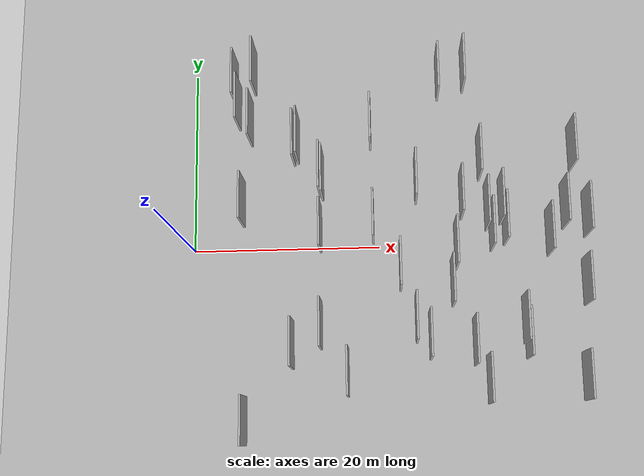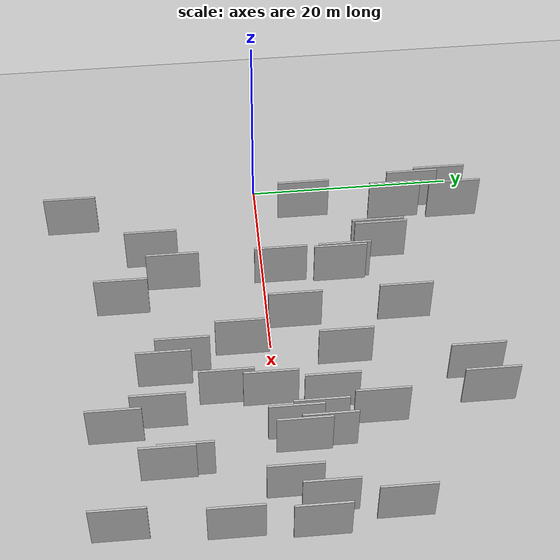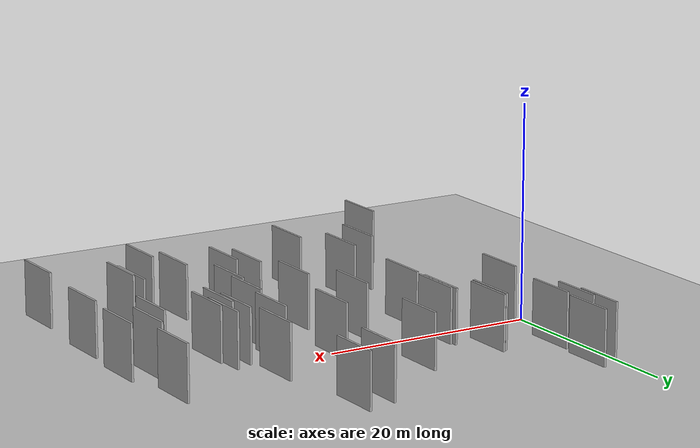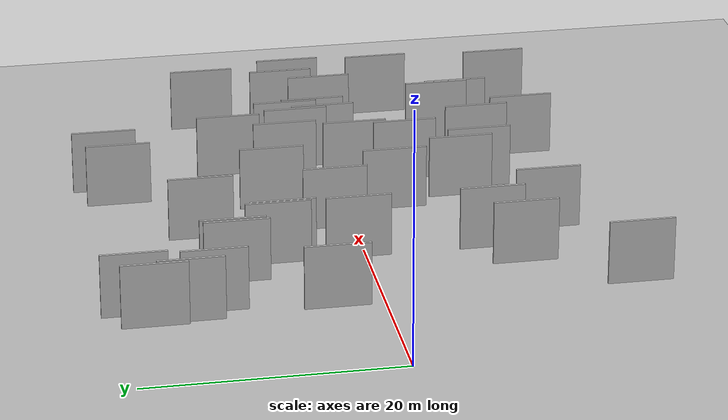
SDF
<?xml version="1.0" encoding="utf-8"?>

<sdf version="1.6">

   <world name="default">

      <gui fullscreen="0">

         <camera name="user_camera">

            <pose>-15 0 4.57585 0 0 0</pose>

            <view_controller>orbit</view_controller>

         </camera>

      </gui>

      <scene>

         <sky>

           <clouds>

             <speed>12</speed>

           </clouds>

         </sky>

         <ambient>0.4 0.4 0.4 1</ambient>

         <background>0.7 0.7 0.7 1</background>

         <shadows>1</shadows>

      </scene>

      <gravity>0 0 -9.8066</gravity>

      <magnetic_field>6e-06 2.3e-05 -4.2e-05</magnetic_field>

      <physics default="0" name="default_physics" type="ode">

         <ode>

            <solver>

               <type>quick</type>

               <iters>10</iters>

               <sor>1.0</sor>

               <use_dynamic_moi_rescaling>0</use_dynamic_moi_rescaling>

            </solver>

            <constraints>

               <cfm>0</cfm>

               <erp>0.2</erp>

               <contact_max_correcting_vel>100</contact_max_correcting_vel>

               <contact_surface_layer>0.001</contact_surface_layer>

            </constraints>

         </ode>

         <max_step_size>0.004</max_step_size>

         <real_time_factor>1</real_time_factor>

         <real_time_update_rate>250</real_time_update_rate>

      </physics>

      <light name="sun" type="directional">

         <cast_shadows>1</cast_shadows>

         <pose>0 0 10 0 0 0</pose>

         <diffuse>0.8 0.8 0.8 1</diffuse>

         <specular>0.2 0.2 0.2 1</specular>

         <attenuation>

            <range>1000</range>

            <constant>0.9</constant>

            <linear>0.01</linear>

            <quadratic>0.001</quadratic>

         </attenuation>

         <direction>-0.5 0.1 -0.9</direction>

      </light>

      <include>

         <name>ground_plane_1</name>

         <uri>model://HANNAS_ground_plane</uri>

         <pose>0 0 0  0 0 0</pose>

      </include>

      <include>

         <name>ground_plane_2</name>

         <uri>model://HANNAS_ground_plane</uri>

         <pose>100 0 0  0 0 0</pose>

      </include>

      <model name="HANNAS_wall_1">

         <static>1</static>

         <pose frame="">27.5637 -4.5949 2.5 0.000000 0.000000 1.570796</pose>

         <link name="link">

            <pose frame="">0 0 2.50 0 0 0</pose>

            <collision name="collision">

               <geometry>

                  <box>

                     <size>5.00 0.2 5.00</size>

                  </box>

               </geometry>

               <max_contacts>10</max_contacts>

               <surface>

                  <contact>

                     <ode/>

                  </contact>

                  <bounce/>

                  <friction>

                     <torsional>

                        <ode/>

                     </torsional>

                     <ode/>

                  </friction>

               </surface>

            </collision>

            <visual name="visual">

               <cast_shadows>0</cast_shadows>

               <geometry>

                  <box>

                     <size>5.00 0.2 5.00</size>

                  </box>

               </geometry>

               <material>

                  <script>

                     <uri>model://HANNAS_wall/materials/scripts</uri>

                     <uri>model://HANNAS_wall/materials/textures</uri>

                     <name>vrc/HANNAS_wall</name>

                  </script>

               </material>

            </visual>

            <self_collide>0</self_collide>

            <enable_wind>0</enable_wind>

            <kinematic>0</kinematic>

         </link>

      </model>

      <model name="HANNAS_wall_2">

         <static>1</static>

         <pose frame="">40.7192 9.8620 2.5 0.000000 0.000000 1.570796</pose>

         <link name="link">

            <pose frame="">0 0 2.50 0 0 0</pose>

            <collision name="collision">

               <geometry>

                  <box>

                     <size>5.00 0.2 5.00</size>

                  </box>

               </geometry>

               <max_contacts>10</max_contacts>

               <surface>

                  <contact>

                     <ode/>

                  </contact>

                  <bounce/>

                  <friction>

                     <torsional>

                        <ode/>

                     </torsional>

                     <ode/>

                  </friction>

               </surface>

            </collision>

            <visual name="visual">

               <cast_shadows>0</cast_shadows>

               <geometry>

                  <box>

                     <size>5.00 0.2 5.00</size>

                  </box>

               </geometry>

               <material>

                  <script>

                     <uri>model://HANNAS_wall/materials/scripts</uri>

                     <uri>model://HANNAS_wall/materials/textures</uri>

                     <name>vrc/HANNAS_wall</name>

                  </script>

               </material>

            </visual>

            <self_collide>0</self_collide>

            <enable_wind>0</enable_wind>

            <kinematic>0</kinematic>

         </link>

      </model>

      <model name="HANNAS_wall_3">

         <static>1</static>

         <pose frame="">5.9075 -18.3502 2.5 0.000000 0.000000 1.570796</pose>

         <link name="link">

            <pose frame="">0 0 2.50 0 0 0</pose>

            <collision name="collision">

               <geometry>

                  <box>

                     <size>5.00 0.2 5.00</size>

                  </box>

               </geometry>

               <max_contacts>10</max_contacts>

               <surface>

                  <contact>

                     <ode/>

                  </contact>

                  <bounce/>

                  <friction>

                     <torsional>

                        <ode/>

                     </torsional>

                     <ode/>

                  </friction>

               </surface>

            </collision>

            <visual name="visual">

               <cast_shadows>0</cast_shadows>

               <geometry>

                  <box>

                     <size>5.00 0.2 5.00</size>

                  </box>

               </geometry>

               <material>

                  <script>

                     <uri>model://HANNAS_wall/materials/scripts</uri>

                     <uri>model://HANNAS_wall/materials/textures</uri>

                     <name>vrc/HANNAS_wall</name>

                  </script>

               </material>

            </visual>

            <self_collide>0</self_collide>

            <enable_wind>0</enable_wind>

            <kinematic>0</kinematic>

         </link>

      </model>

      <model name="HANNAS_wall_4">

         <static>1</static>

         <pose frame="">39.6211 3.4792 2.5 0.000000 0.000000 1.570796</pose>

         <link name="link">

            <pose frame="">0 0 2.50 0 0 0</pose>

            <collision name="collision">

               <geometry>

                  <box>

                     <size>5.00 0.2 5.00</size>

                  </box>

               </geometry>

               <max_contacts>10</max_contacts>

               <surface>

                  <contact>

                     <ode/>

                  </contact>

                  <bounce/>

                  <friction>

                     <torsional>

                        <ode/>

                     </torsional>

                     <ode/>

                  </friction>

               </surface>

            </collision>

            <visual name="visual">

               <cast_shadows>0</cast_shadows>

               <geometry>

                  <box>

                     <size>5.00 0.2 5.00</size>

                  </box>

               </geometry>

               <material>

                  <script>

                     <uri>model://HANNAS_wall/materials/scripts</uri>

                     <uri>model://HANNAS_wall/materials/textures</uri>

                     <name>vrc/HANNAS_wall</name>

                  </script>

               </material>

            </visual>

            <self_collide>0</self_collide>

            <enable_wind>0</enable_wind>

            <kinematic>0</kinematic>

         </link>

      </model>

      <model name="HANNAS_wall_5">

         <static>1</static>

         <pose frame="">31.4234 3.5191 2.5 0.000000 0.000000 1.570796</pose>

         <link name="link">

            <pose frame="">0 0 2.50 0 0 0</pose>

            <collision name="collision">

               <geometry>

                  <box>

                     <size>5.00 0.2 5.00</size>

                  </box>

               </geometry>

               <max_contacts>10</max_contacts>

               <surface>

                  <contact>

                     <ode/>

                  </contact>

                  <bounce/>

                  <friction>

                     <torsional>

                        <ode/>

                     </torsional>

                     <ode/>

                  </friction>

               </surface>

            </collision>

            <visual name="visual">

               <cast_shadows>0</cast_shadows>

               <geometry>

                  <box>

                     <size>5.00 0.2 5.00</size>

                  </box>

               </geometry>

               <material>

                  <script>

                     <uri>model://HANNAS_wall/materials/scripts</uri>

                     <uri>model://HANNAS_wall/materials/textures</uri>

                     <name>vrc/HANNAS_wall</name>

                  </script>

               </material>

            </visual>

            <self_collide>0</self_collide>

            <enable_wind>0</enable_wind>

            <kinematic>0</kinematic>

         </link>

      </model>

      <model name="HANNAS_wall_6">

         <static>1</static>

         <pose frame="">14.0777 7.2195 2.5 0.000000 0.000000 1.570796</pose>

         <link name="link">

            <pose frame="">0 0 2.50 0 0 0</pose>

            <collision name="collision">

               <geometry>

                  <box>

                     <size>5.00 0.2 5.00</size>

                  </box>

               </geometry>

               <max_contacts>10</max_contacts>

               <surface>

                  <contact>

                     <ode/>

                  </contact>

                  <bounce/>

                  <friction>

                     <torsional>

                        <ode/>

                     </torsional>

                     <ode/>

                  </friction>

               </surface>

            </collision>

            <visual name="visual">

               <cast_shadows>0</cast_shadows>

               <geometry>

                  <box>

                     <size>5.00 0.2 5.00</size>

                  </box>

               </geometry>

               <material>

                  <script>

                     <uri>model://HANNAS_wall/materials/scripts</uri>

                     <uri>model://HANNAS_wall/materials/textures</uri>

                     <name>vrc/HANNAS_wall</name>

                  </script>

               </material>

            </visual>

            <self_collide>0</self_collide>

            <enable_wind>0</enable_wind>

            <kinematic>0</kinematic>

         </link>

      </model>

      <model name="HANNAS_wall_7">

         <static>1</static>

         <pose frame="">41.4956 -4.7548 2.5 0.000000 0.000000 1.570796</pose>

         <link name="link">

            <pose frame="">0 0 2.50 0 0 0</pose>

            <collision name="collision">

               <geometry>

                  <box>

                     <size>5.00 0.2 5.00</size>

                  </box>

               </geometry>

               <max_contacts>10</max_contacts>

               <surface>

                  <contact>

                     <ode/>

                  </contact>

                  <bounce/>

                  <friction>

                     <torsional>

                        <ode/>

                     </torsional>

                     <ode/>

                  </friction>

               </surface>

            </collision>

            <visual name="visual">

               <cast_shadows>0</cast_shadows>

               <geometry>

                  <box>

                     <size>5.00 0.2 5.00</size>

                  </box>

               </geometry>

               <material>

                  <script>

                     <uri>model://HANNAS_wall/materials/scripts</uri>

                     <uri>model://HANNAS_wall/materials/textures</uri>

                     <name>vrc/HANNAS_wall</name>

                  </script>

               </material>

            </visual>

            <self_collide>0</self_collide>

            <enable_wind>0</enable_wind>

            <kinematic>0</kinematic>

         </link>

      </model>

      <model name="HANNAS_wall_8">

         <static>1</static>

         <pose frame="">16.5166 -13.6902 2.5 0.000000 0.000000 1.570796</pose>

         <link name="link">

            <pose frame="">0 0 2.50 0 0 0</pose>

            <collision name="collision">

               <geometry>

                  <box>

                     <size>5.00 0.2 5.00</size>

                  </box>

               </geometry>

               <max_contacts>10</max_contacts>

               <surface>

                  <contact>

                     <ode/>

                  </contact>

                  <bounce/>

                  <friction>

                     <torsional>

                        <ode/>

                     </torsional>

                     <ode/>

                  </friction>

               </surface>

            </collision>

            <visual name="visual">

               <cast_shadows>0</cast_shadows>

               <geometry>

                  <box>

                     <size>5.00 0.2 5.00</size>

                  </box>

               </geometry>

               <material>

                  <script>

                     <uri>model://HANNAS_wall/materials/scripts</uri>

                     <uri>model://HANNAS_wall/materials/textures</uri>

                     <name>vrc/HANNAS_wall</name>

                  </script>

               </material>

            </visual>

            <self_collide>0</self_collide>

            <enable_wind>0</enable_wind>

            <kinematic>0</kinematic>

         </link>

      </model>

      <model name="HANNAS_wall_9">

         <static>1</static>

         <pose frame="">31.8495 1.2687 2.5 0.000000 0.000000 1.570796</pose>

         <link name="link">

            <pose frame="">0 0 2.50 0 0 0</pose>

            <collision name="collision">

               <geometry>

                  <box>

                     <size>5.00 0.2 5.00</size>

                  </box>

               </geometry>

               <max_contacts>10</max_contacts>

               <surface>

                  <contact>

                     <ode/>

                  </contact>

                  <bounce/>

                  <friction>

                     <torsional>

                        <ode/>

                     </torsional>

                     <ode/>

                  </friction>

               </surface>

            </collision>

            <visual name="visual">

               <cast_shadows>0</cast_shadows>

               <geometry>

                  <box>

                     <size>5.00 0.2 5.00</size>

                  </box>

               </geometry>

               <material>

                  <script>

                     <uri>model://HANNAS_wall/materials/scripts</uri>

                     <uri>model://HANNAS_wall/materials/textures</uri>

                     <name>vrc/HANNAS_wall</name>

                  </script>

               </material>

            </visual>

            <self_collide>0</self_collide>

            <enable_wind>0</enable_wind>

            <kinematic>0</kinematic>

         </link>

      </model>

      <model name="HANNAS_wall_10">

         <static>1</static>

         <pose frame="">37.8703 0.5974 2.5 0.000000 0.000000 1.570796</pose>

         <link name="link">

            <pose frame="">0 0 2.50 0 0 0</pose>

            <collision name="collision">

               <geometry>

                  <box>

                     <size>5.00 0.2 5.00</size>

                  </box>

               </geometry>

               <max_contacts>10</max_contacts>

               <surface>

                  <contact>

                     <ode/>

                  </contact>

                  <bounce/>

                  <friction>

                     <torsional>

                        <ode/>

                     </torsional>

                     <ode/>

                  </friction>

               </surface>

            </collision>

            <visual name="visual">

               <cast_shadows>0</cast_shadows>

               <geometry>

                  <box>

                     <size>5.00 0.2 5.00</size>

                  </box>

               </geometry>

               <material>

                  <script>

                     <uri>model://HANNAS_wall/materials/scripts</uri>

                     <uri>model://HANNAS_wall/materials/textures</uri>

                     <name>vrc/HANNAS_wall</name>

                  </script>

               </material>

            </visual>

            <self_collide>0</self_collide>

            <enable_wind>0</enable_wind>

            <kinematic>0</kinematic>

         </link>

      </model>

      <model name="HANNAS_wall_11">

         <static>1</static>

         <pose frame="">11.1091 11.1406 2.5 0.000000 0.000000 1.570796</pose>

         <link name="link">

            <pose frame="">0 0 2.50 0 0 0</pose>

            <collision name="collision">

               <geometry>

                  <box>

                     <size>5.00 0.2 5.00</size>

                  </box>

               </geometry>

               <max_contacts>10</max_contacts>

               <surface>

                  <contact>

                     <ode/>

                  </contact>

                  <bounce/>

                  <friction>

                     <torsional>

                        <ode/>

                     </torsional>

                     <ode/>

                  </friction>

               </surface>

            </collision>

            <visual name="visual">

               <cast_shadows>0</cast_shadows>

               <geometry>

                  <box>

                     <size>5.00 0.2 5.00</size>

                  </box>

               </geometry>

               <material>

                  <script>

                     <uri>model://HANNAS_wall/materials/scripts</uri>

                     <uri>model://HANNAS_wall/materials/textures</uri>

                     <name>vrc/HANNAS_wall</name>

                  </script>

               </material>

            </visual>

            <self_collide>0</self_collide>

            <enable_wind>0</enable_wind>

            <kinematic>0</kinematic>

         </link>

      </model>

      <model name="HANNAS_wall_12">

         <static>1</static>

         <pose frame="">41.9129 2.5481 2.5 0.000000 0.000000 1.570796</pose>

         <link name="link">

            <pose frame="">0 0 2.50 0 0 0</pose>

            <collision name="collision">

               <geometry>

                  <box>

                     <size>5.00 0.2 5.00</size>

                  </box>

               </geometry>

               <max_contacts>10</max_contacts>

               <surface>

                  <contact>

                     <ode/>

                  </contact>

                  <bounce/>

                  <friction>

                     <torsional>

                        <ode/>

                     </torsional>

                     <ode/>

                  </friction>

               </surface>

            </collision>

            <visual name="visual">

               <cast_shadows>0</cast_shadows>

               <geometry>

                  <box>

                     <size>5.00 0.2 5.00</size>

                  </box>

               </geometry>

               <material>

                  <script>

                     <uri>model://HANNAS_wall/materials/scripts</uri>

                     <uri>model://HANNAS_wall/materials/textures</uri>

                     <name>vrc/HANNAS_wall</name>

                  </script>

               </material>

            </visual>

            <self_collide>0</self_collide>

            <enable_wind>0</enable_wind>

            <kinematic>0</kinematic>

         </link>

      </model>

      <model name="HANNAS_wall_13">

         <static>1</static>

         <pose frame="">28.7899 4.7964 2.5 0.000000 0.000000 1.570796</pose>

         <link name="link">

            <pose frame="">0 0 2.50 0 0 0</pose>

            <collision name="collision">

               <geometry>

                  <box>

                     <size>5.00 0.2 5.00</size>

                  </box>

               </geometry>

               <max_contacts>10</max_contacts>

               <surface>

                  <contact>

                     <ode/>

                  </contact>

                  <bounce/>

                  <friction>

                     <torsional>

                        <ode/>

                     </torsional>

                     <ode/>

                  </friction>

               </surface>

            </collision>

            <visual name="visual">

               <cast_shadows>0</cast_shadows>

               <geometry>

                  <box>

                     <size>5.00 0.2 5.00</size>

                  </box>

               </geometry>

               <material>

                  <script>

                     <uri>model://HANNAS_wall/materials/scripts</uri>

                     <uri>model://HANNAS_wall/materials/textures</uri>

                     <name>vrc/HANNAS_wall</name>

                  </script>

               </material>

            </visual>

            <self_collide>0</self_collide>

            <enable_wind>0</enable_wind>

            <kinematic>0</kinematic>

         </link>

      </model>

      <model name="HANNAS_wall_14">

         <static>1</static>

         <pose frame="">30.9731 -14.7214 2.5 0.000000 0.000000 1.570796</pose>

         <link name="link">

            <pose frame="">0 0 2.50 0 0 0</pose>

            <collision name="collision">

               <geometry>

                  <box>

                     <size>5.00 0.2 5.00</size>

                  </box>

               </geometry>

               <max_contacts>10</max_contacts>

               <surface>

                  <contact>

                     <ode/>

                  </contact>

                  <bounce/>

                  <friction>

                     <torsional>

                        <ode/>

                     </torsional>

                     <ode/>

                  </friction>

               </surface>

            </collision>

            <visual name="visual">

               <cast_shadows>0</cast_shadows>

               <geometry>

                  <box>

                     <size>5.00 0.2 5.00</size>

                  </box>

               </geometry>

               <material>

                  <script>

                     <uri>model://HANNAS_wall/materials/scripts</uri>

                     <uri>model://HANNAS_wall/materials/textures</uri>

                     <name>vrc/HANNAS_wall</name>

                  </script>

               </material>

            </visual>

            <self_collide>0</self_collide>

            <enable_wind>0</enable_wind>

            <kinematic>0</kinematic>

         </link>

      </model>

      <model name="HANNAS_wall_15">

         <static>1</static>

         <pose frame="">13.8165 7.6348 2.5 0.000000 0.000000 1.570796</pose>

         <link name="link">

            <pose frame="">0 0 2.50 0 0 0</pose>

            <collision name="collision">

               <geometry>

                  <box>

                     <size>5.00 0.2 5.00</size>

                  </box>

               </geometry>

               <max_contacts>10</max_contacts>

               <surface>

                  <contact>

                     <ode/>

                  </contact>

                  <bounce/>

                  <friction>

                     <torsional>

                        <ode/>

                     </torsional>

                     <ode/>

                  </friction>

               </surface>

            </collision>

            <visual name="visual">

               <cast_shadows>0</cast_shadows>

               <geometry>

                  <box>

                     <size>5.00 0.2 5.00</size>

                  </box>

               </geometry>

               <material>

                  <script>

                     <uri>model://HANNAS_wall/materials/scripts</uri>

                     <uri>model://HANNAS_wall/materials/textures</uri>

                     <name>vrc/HANNAS_wall</name>

                  </script>

               </material>

            </visual>

            <self_collide>0</self_collide>

            <enable_wind>0</enable_wind>

            <kinematic>0</kinematic>

         </link>

      </model>

      <model name="HANNAS_wall_16">

         <static>1</static>

         <pose frame="">19.3942 2.3693 2.5 0.000000 0.000000 1.570796</pose>

         <link name="link">

            <pose frame="">0 0 2.50 0 0 0</pose>

            <collision name="collision">

               <geometry>

                  <box>

                     <size>5.00 0.2 5.00</size>

                  </box>

               </geometry>

               <max_contacts>10</max_contacts>

               <surface>

                  <contact>

                     <ode/>

                  </contact>

                  <bounce/>

                  <friction>

                     <torsional>

                        <ode/>

                     </torsional>

                     <ode/>

                  </friction>

               </surface>

            </collision>

            <visual name="visual">

               <cast_shadows>0</cast_shadows>

               <geometry>

                  <box>

                     <size>5.00 0.2 5.00</size>

                  </box>

               </geometry>

               <material>

                  <script>

                     <uri>model://HANNAS_wall/materials/scripts</uri>

                     <uri>model://HANNAS_wall/materials/textures</uri>

                     <name>vrc/HANNAS_wall</name>

                  </script>

               </material>

            </visual>

            <self_collide>0</self_collide>

            <enable_wind>0</enable_wind>

            <kinematic>0</kinematic>

         </link>

      </model>

      <model name="HANNAS_wall_17">

         <static>1</static>

         <pose frame="">11.4869 11.3914 2.5 0.000000 0.000000 1.570796</pose>

         <link name="link">

            <pose frame="">0 0 2.50 0 0 0</pose>

            <collision name="collision">

               <geometry>

                  <box>

                     <size>5.00 0.2 5.00</size>

                  </box>

               </geometry>

               <max_contacts>10</max_contacts>

               <surface>

                  <contact>

                     <ode/>

                  </contact>

                  <bounce/>

                  <friction>

                     <torsional>

                        <ode/>

                     </torsional>

                     <ode/>

                  </friction>

               </surface>

            </collision>

            <visual name="visual">

               <cast_shadows>0</cast_shadows>

               <geometry>

                  <box>

                     <size>5.00 0.2 5.00</size>

                  </box>

               </geometry>

               <material>

                  <script>

                     <uri>model://HANNAS_wall/materials/scripts</uri>

                     <uri>model://HANNAS_wall/materials/textures</uri>

                     <name>vrc/HANNAS_wall</name>

                  </script>

               </material>

            </visual>

            <self_collide>0</self_collide>

            <enable_wind>0</enable_wind>

            <kinematic>0</kinematic>

         </link>

      </model>

      <model name="HANNAS_wall_18">

         <static>1</static>

         <pose frame="">29.6812 -10.8142 2.5 0.000000 0.000000 1.570796</pose>

         <link name="link">

            <pose frame="">0 0 2.50 0 0 0</pose>

            <collision name="collision">

               <geometry>

                  <box>

                     <size>5.00 0.2 5.00</size>

                  </box>

               </geometry>

               <max_contacts>10</max_contacts>

               <surface>

                  <contact>

                     <ode/>

                  </contact>

                  <bounce/>

                  <friction>

                     <torsional>

                        <ode/>

                     </torsional>

                     <ode/>

                  </friction>

               </surface>

            </collision>

            <visual name="visual">

               <cast_shadows>0</cast_shadows>

               <geometry>

                  <box>

                     <size>5.00 0.2 5.00</size>

                  </box>

               </geometry>

               <material>

                  <script>

                     <uri>model://HANNAS_wall/materials/scripts</uri>

                     <uri>model://HANNAS_wall/materials/textures</uri>

                     <name>vrc/HANNAS_wall</name>

                  </script>

               </material>

            </visual>

            <self_collide>0</self_collide>

            <enable_wind>0</enable_wind>

            <kinematic>0</kinematic>

         </link>

      </model>

      <model name="HANNAS_wall_19">

         <static>1</static>

         <pose frame="">6.8335 19.2746 2.5 0.000000 0.000000 1.570796</pose>

         <link name="link">

            <pose frame="">0 0 2.50 0 0 0</pose>

            <collision name="collision">

               <geometry>

                  <box>

                     <size>5.00 0.2 5.00</size>

                  </box>

               </geometry>

               <max_contacts>10</max_contacts>

               <surface>

                  <contact>

                     <ode/>

                  </contact>

                  <bounce/>

                  <friction>

                     <torsional>

                        <ode/>

                     </torsional>

                     <ode/>

                  </friction>

               </surface>

            </collision>

            <visual name="visual">

               <cast_shadows>0</cast_shadows>

               <geometry>

                  <box>

                     <size>5.00 0.2 5.00</size>

                  </box>

               </geometry>

               <material>

                  <script>

                     <uri>model://HANNAS_wall/materials/scripts</uri>

                     <uri>model://HANNAS_wall/materials/textures</uri>

                     <name>vrc/HANNAS_wall</name>

                  </script>

               </material>

            </visual>

            <self_collide>0</self_collide>

            <enable_wind>0</enable_wind>

            <kinematic>0</kinematic>

         </link>

      </model>

      <model name="HANNAS_wall_20">

         <static>1</static>

         <pose frame="">30.8264 9.0242 2.5 0.000000 0.000000 1.570796</pose>

         <link name="link">

            <pose frame="">0 0 2.50 0 0 0</pose>

            <collision name="collision">

               <geometry>

                  <box>

                     <size>5.00 0.2 5.00</size>

                  </box>

               </geometry>

               <max_contacts>10</max_contacts>

               <surface>

                  <contact>

                     <ode/>

                  </contact>

                  <bounce/>

                  <friction>

                     <torsional>

                        <ode/>

                     </torsional>

                     <ode/>

                  </friction>

               </surface>

            </collision>

            <visual name="visual">

               <cast_shadows>0</cast_shadows>

               <geometry>

                  <box>

                     <size>5.00 0.2 5.00</size>

                  </box>

               </geometry>

               <material>

                  <script>

                     <uri>model://HANNAS_wall/materials/scripts</uri>

                     <uri>model://HANNAS_wall/materials/textures</uri>

                     <name>vrc/HANNAS_wall</name>

                  </script>

               </material>

            </visual>

            <self_collide>0</self_collide>

            <enable_wind>0</enable_wind>

            <kinematic>0</kinematic>

         </link>

      </model>

      <model name="HANNAS_wall_21">

         <static>1</static>

         <pose frame="">29.4355 19.0526 2.5 0.000000 0.000000 1.570796</pose>

         <link name="link">

            <pose frame="">0 0 2.50 0 0 0</pose>

            <collision name="collision">

               <geometry>

                  <box>

                     <size>5.00 0.2 5.00</size>

                  </box>

               </geometry>

               <max_contacts>10</max_contacts>

               <surface>

                  <contact>

                     <ode/>

                  </contact>

                  <bounce/>

                  <friction>

                     <torsional>

                        <ode/>

                     </torsional>

                     <ode/>

                  </friction>

               </surface>

            </collision>

            <visual name="visual">

               <cast_shadows>0</cast_shadows>

               <geometry>

                  <box>

                     <size>5.00 0.2 5.00</size>

                  </box>

               </geometry>

               <material>

                  <script>

                     <uri>model://HANNAS_wall/materials/scripts</uri>

                     <uri>model://HANNAS_wall/materials/textures</uri>

                     <name>vrc/HANNAS_wall</name>

                  </script>

               </material>

            </visual>

            <self_collide>0</self_collide>

            <enable_wind>0</enable_wind>

            <kinematic>0</kinematic>

         </link>

      </model>

      <model name="HANNAS_wall_22">

         <static>1</static>

         <pose frame="">13.7806 -8.7569 2.5 0.000000 0.000000 1.570796</pose>

         <link name="link">

            <pose frame="">0 0 2.50 0 0 0</pose>

            <collision name="collision">

               <geometry>

                  <box>

                     <size>5.00 0.2 5.00</size>

                  </box>

               </geometry>

               <max_contacts>10</max_contacts>

               <surface>

                  <contact>

                     <ode/>

                  </contact>

                  <bounce/>

                  <friction>

                     <torsional>

                        <ode/>

                     </torsional>

                     <ode/>

                  </friction>

               </surface>

            </collision>

            <visual name="visual">

               <cast_shadows>0</cast_shadows>

               <geometry>

                  <box>

                     <size>5.00 0.2 5.00</size>

                  </box>

               </geometry>

               <material>

                  <script>

                     <uri>model://HANNAS_wall/materials/scripts</uri>

                     <uri>model://HANNAS_wall/materials/textures</uri>

                     <name>vrc/HANNAS_wall</name>

                  </script>

               </material>

            </visual>

            <self_collide>0</self_collide>

            <enable_wind>0</enable_wind>

            <kinematic>0</kinematic>

         </link>

      </model>

      <model name="HANNAS_wall_23">

         <static>1</static>

         <pose frame="">26.6586 18.2300 2.5 0.000000 0.000000 1.570796</pose>

         <link name="link">

            <pose frame="">0 0 2.50 0 0 0</pose>

            <collision name="collision">

               <geometry>

                  <box>

                     <size>5.00 0.2 5.00</size>

                  </box>

               </geometry>

               <max_contacts>10</max_contacts>

               <surface>

                  <contact>

                     <ode/>

                  </contact>

                  <bounce/>

                  <friction>

                     <torsional>

                        <ode/>

                     </torsional>

                     <ode/>

                  </friction>

               </surface>

            </collision>

            <visual name="visual">

               <cast_shadows>0</cast_shadows>

               <geometry>

                  <box>

                     <size>5.00 0.2 5.00</size>

                  </box>

               </geometry>

               <material>

                  <script>

                     <uri>model://HANNAS_wall/materials/scripts</uri>

                     <uri>model://HANNAS_wall/materials/textures</uri>

                     <name>vrc/HANNAS_wall</name>

                  </script>

               </material>

            </visual>

            <self_collide>0</self_collide>

            <enable_wind>0</enable_wind>

            <kinematic>0</kinematic>

         </link>

      </model>

      <model name="HANNAS_wall_24">

         <static>1</static>

         <pose frame="">13.8288 1.5279 2.5 0.000000 0.000000 1.570796</pose>

         <link name="link">

            <pose frame="">0 0 2.50 0 0 0</pose>

            <collision name="collision">

               <geometry>

                  <box>

                     <size>5.00 0.2 5.00</size>

                  </box>

               </geometry>

               <max_contacts>10</max_contacts>

               <surface>

                  <contact>

                     <ode/>

                  </contact>

                  <bounce/>

                  <friction>

                     <torsional>

                        <ode/>

                     </torsional>

                     <ode/>

                  </friction>

               </surface>

            </collision>

            <visual name="visual">

               <cast_shadows>0</cast_shadows>

               <geometry>

                  <box>

                     <size>5.00 0.2 5.00</size>

                  </box>

               </geometry>

               <material>

                  <script>

                     <uri>model://HANNAS_wall/materials/scripts</uri>

                     <uri>model://HANNAS_wall/materials/textures</uri>

                     <name>vrc/HANNAS_wall</name>

                  </script>

               </material>

            </visual>

            <self_collide>0</self_collide>

            <enable_wind>0</enable_wind>

            <kinematic>0</kinematic>

         </link>

      </model>

      <model name="HANNAS_wall_25">

         <static>1</static>

         <pose frame="">28.0621 -0.6529 2.5 0.000000 0.000000 1.570796</pose>

         <link name="link">

            <pose frame="">0 0 2.50 0 0 0</pose>

            <collision name="collision">

               <geometry>

                  <box>

                     <size>5.00 0.2 5.00</size>

                  </box>

               </geometry>

               <max_contacts>10</max_contacts>

               <surface>

                  <contact>

                     <ode/>

                  </contact>

                  <bounce/>

                  <friction>

                     <torsional>

                        <ode/>

                     </torsional>

                     <ode/>

                  </friction>

               </surface>

            </collision>

            <visual name="visual">

               <cast_shadows>0</cast_shadows>

               <geometry>

                  <box>

                     <size>5.00 0.2 5.00</size>

                  </box>

               </geometry>

               <material>

                  <script>

                     <uri>model://HANNAS_wall/materials/scripts</uri>

                     <uri>model://HANNAS_wall/materials/textures</uri>

                     <name>vrc/HANNAS_wall</name>

                  </script>

               </material>

            </visual>

            <self_collide>0</self_collide>

            <enable_wind>0</enable_wind>

            <kinematic>0</kinematic>

         </link>

      </model>

      <model name="HANNAS_wall_26">

         <static>1</static>

         <pose frame="">23.7025 -8.3374 2.5 0.000000 0.000000 1.570796</pose>

         <link name="link">

            <pose frame="">0 0 2.50 0 0 0</pose>

            <collision name="collision">

               <geometry>

                  <box>

                     <size>5.00 0.2 5.00</size>

                  </box>

               </geometry>

               <max_contacts>10</max_contacts>

               <surface>

                  <contact>

                     <ode/>

                  </contact>

                  <bounce/>

                  <friction>

                     <torsional>

                        <ode/>

                     </torsional>

                     <ode/>

                  </friction>

               </surface>

            </collision>

            <visual name="visual">

               <cast_shadows>0</cast_shadows>

               <geometry>

                  <box>

                     <size>5.00 0.2 5.00</size>

                  </box>

               </geometry>

               <material>

                  <script>

                     <uri>model://HANNAS_wall/materials/scripts</uri>

                     <uri>model://HANNAS_wall/materials/textures</uri>

                     <name>vrc/HANNAS_wall</name>

                  </script>

               </material>

            </visual>

            <self_collide>0</self_collide>

            <enable_wind>0</enable_wind>

            <kinematic>0</kinematic>

         </link>

      </model>

      <model name="HANNAS_wall_27">

         <static>1</static>

         <pose frame="">10.8087 -10.6900 2.5 0.000000 0.000000 1.570796</pose>

         <link name="link">

            <pose frame="">0 0 2.50 0 0 0</pose>

            <collision name="collision">

               <geometry>

                  <box>

                     <size>5.00 0.2 5.00</size>

                  </box>

               </geometry>

               <max_contacts>10</max_contacts>

               <surface>

                  <contact>

                     <ode/>

                  </contact>

                  <bounce/>

                  <friction>

                     <torsional>

                        <ode/>

                     </torsional>

                     <ode/>

                  </friction>

               </surface>

            </collision>

            <visual name="visual">

               <cast_shadows>0</cast_shadows>

               <geometry>

                  <box>

                     <size>5.00 0.2 5.00</size>

                  </box>

               </geometry>

               <material>

                  <script>

                     <uri>model://HANNAS_wall/materials/scripts</uri>

                     <uri>model://HANNAS_wall/materials/textures</uri>

                     <name>vrc/HANNAS_wall</name>

                  </script>

               </material>

            </visual>

            <self_collide>0</self_collide>

            <enable_wind>0</enable_wind>

            <kinematic>0</kinematic>

         </link>

      </model>

      <model name="HANNAS_wall_28">

         <static>1</static>

         <pose frame="">23.9989 6.5804 2.5 0.000000 0.000000 1.570796</pose>

         <link name="link">

            <pose frame="">0 0 2.50 0 0 0</pose>

            <collision name="collision">

               <geometry>

                  <box>

                     <size>5.00 0.2 5.00</size>

                  </box>

               </geometry>

               <max_contacts>10</max_contacts>

               <surface>

                  <contact>

                     <ode/>

                  </contact>

                  <bounce/>

                  <friction>

                     <torsional>

                        <ode/>

                     </torsional>

                     <ode/>

                  </friction>

               </surface>

            </collision>

            <visual name="visual">

               <cast_shadows>0</cast_shadows>

               <geometry>

                  <box>

                     <size>5.00 0.2 5.00</size>

                  </box>

               </geometry>

               <material>

                  <script>

                     <uri>model://HANNAS_wall/materials/scripts</uri>

                     <uri>model://HANNAS_wall/materials/textures</uri>

                     <name>vrc/HANNAS_wall</name>

                  </script>

               </material>

            </visual>

            <self_collide>0</self_collide>

            <enable_wind>0</enable_wind>

            <kinematic>0</kinematic>

         </link>

      </model>

      <model name="HANNAS_wall_29">

         <static>1</static>

         <pose frame="">4.8075 18.0208 2.5 0.000000 0.000000 1.570796</pose>

         <link name="link">

            <pose frame="">0 0 2.50 0 0 0</pose>

            <collision name="collision">

               <geometry>

                  <box>

                     <size>5.00 0.2 5.00</size>

                  </box>

               </geometry>

               <max_contacts>10</max_contacts>

               <surface>

                  <contact>

                     <ode/>

                  </contact>

                  <bounce/>

                  <friction>

                     <torsional>

                        <ode/>

                     </torsional>

                     <ode/>

                  </friction>

               </surface>

            </collision>

            <visual name="visual">

               <cast_shadows>0</cast_shadows>

               <geometry>

                  <box>

                     <size>5.00 0.2 5.00</size>

                  </box>

               </geometry>

               <material>

                  <script>

                     <uri>model://HANNAS_wall/materials/scripts</uri>

                     <uri>model://HANNAS_wall/materials/textures</uri>

                     <name>vrc/HANNAS_wall</name>

                  </script>

               </material>

            </visual>

            <self_collide>0</self_collide>

            <enable_wind>0</enable_wind>

            <kinematic>0</kinematic>

         </link>

      </model>

      <model name="HANNAS_wall_30">

         <static>1</static>

         <pose frame="">22.1654 -2.7842 2.5 0.000000 0.000000 1.570796</pose>

         <link name="link">

            <pose frame="">0 0 2.50 0 0 0</pose>

            <collision name="collision">

               <geometry>

                  <box>

                     <size>5.00 0.2 5.00</size>

                  </box>

               </geometry>

               <max_contacts>10</max_contacts>

               <surface>

                  <contact>

                     <ode/>

                  </contact>

                  <bounce/>

                  <friction>

                     <torsional>

                        <ode/>

                     </torsional>

                     <ode/>

                  </friction>

               </surface>

            </collision>

            <visual name="visual">

               <cast_shadows>0</cast_shadows>

               <geometry>

                  <box>

                     <size>5.00 0.2 5.00</size>

                  </box>

               </geometry>

               <material>

                  <script>

                     <uri>model://HANNAS_wall/materials/scripts</uri>

                     <uri>model://HANNAS_wall/materials/textures</uri>

                     <name>vrc/HANNAS_wall</name>

                  </script>

               </material>

            </visual>

            <self_collide>0</self_collide>

            <enable_wind>0</enable_wind>

            <kinematic>0</kinematic>

         </link>

      </model>

      <model name="HANNAS_wall_31">

         <static>1</static>

         <pose frame="">35.1457 -10.1974 2.5 0.000000 0.000000 1.570796</pose>

         <link name="link">

            <pose frame="">0 0 2.50 0 0 0</pose>

            <collision name="collision">

               <geometry>

                  <box>

                     <size>5.00 0.2 5.00</size>

                  </box>

               </geometry>

               <max_contacts>10</max_contacts>

               <surface>

                  <contact>

                     <ode/>

                  </contact>

                  <bounce/>

                  <friction>

                     <torsional>

                        <ode/>

                     </torsional>

                     <ode/>

                  </friction>

               </surface>

            </collision>

            <visual name="visual">

               <cast_shadows>0</cast_shadows>

               <geometry>

                  <box>

                     <size>5.00 0.2 5.00</size>

                  </box>

               </geometry>

               <material>

                  <script>

                     <uri>model://HANNAS_wall/materials/scripts</uri>

                     <uri>model://HANNAS_wall/materials/textures</uri>

                     <name>vrc/HANNAS_wall</name>

                  </script>

               </material>

            </visual>

            <self_collide>0</self_collide>

            <enable_wind>0</enable_wind>

            <kinematic>0</kinematic>

         </link>

      </model>

      <model name="HANNAS_wall_32">

         <static>1</static>

         <pose frame="">34.9421 -8.6151 2.5 0.000000 0.000000 1.570796</pose>

         <link name="link">

            <pose frame="">0 0 2.50 0 0 0</pose>

            <collision name="collision">

               <geometry>

                  <box>

                     <size>5.00 0.2 5.00</size>

                  </box>

               </geometry>

               <max_contacts>10</max_contacts>

               <surface>

                  <contact>

                     <ode/>

                  </contact>

                  <bounce/>

                  <friction>

                     <torsional>

                        <ode/>

                     </torsional>

                     <ode/>

                  </friction>

               </surface>

            </collision>

            <visual name="visual">

               <cast_shadows>0</cast_shadows>

               <geometry>

                  <box>

                     <size>5.00 0.2 5.00</size>

                  </box>

               </geometry>

               <material>

                  <script>

                     <uri>model://HANNAS_wall/materials/scripts</uri>

                     <uri>model://HANNAS_wall/materials/textures</uri>

                     <name>vrc/HANNAS_wall</name>

                  </script>

               </material>

            </visual>

            <self_collide>0</self_collide>

            <enable_wind>0</enable_wind>

            <kinematic>0</kinematic>

         </link>

      </model>

      <model name="HANNAS_wall_33">

         <static>1</static>

         <pose frame="">5.6395 4.5106 2.5 0.000000 0.000000 1.570796</pose>

         <link name="link">

            <pose frame="">0 0 2.50 0 0 0</pose>

            <collision name="collision">

               <geometry>

                  <box>

                     <size>5.00 0.2 5.00</size>

                  </box>

               </geometry>

               <max_contacts>10</max_contacts>

               <surface>

                  <contact>

                     <ode/>

                  </contact>

                  <bounce/>

                  <friction>

                     <torsional>

                        <ode/>

                     </torsional>

                     <ode/>

                  </friction>

               </surface>

            </collision>

            <visual name="visual">

               <cast_shadows>0</cast_shadows>

               <geometry>

                  <box>

                     <size>5.00 0.2 5.00</size>

                  </box>

               </geometry>

               <material>

                  <script>

                     <uri>model://HANNAS_wall/materials/scripts</uri>

                     <uri>model://HANNAS_wall/materials/textures</uri>

                     <name>vrc/HANNAS_wall</name>

                  </script>

               </material>

            </visual>

            <self_collide>0</self_collide>

            <enable_wind>0</enable_wind>

            <kinematic>0</kinematic>

         </link>

      </model>

      <model name="HANNAS_wall_34">

         <static>1</static>

         <pose frame="">19.2777 12.7502 2.5 0.000000 0.000000 1.570796</pose>

         <link name="link">

            <pose frame="">0 0 2.50 0 0 0</pose>

            <collision name="collision">

               <geometry>

                  <box>

                     <size>5.00 0.2 5.00</size>

                  </box>

               </geometry>

               <max_contacts>10</max_contacts>

               <surface>

                  <contact>

                     <ode/>

                  </contact>

                  <bounce/>

                  <friction>

                     <torsional>

                        <ode/>

                     </torsional>

                     <ode/>

                  </friction>

               </surface>

            </collision>

            <visual name="visual">

               <cast_shadows>0</cast_shadows>

               <geometry>

                  <box>

                     <size>5.00 0.2 5.00</size>

                  </box>

               </geometry>

               <material>

                  <script>

                     <uri>model://HANNAS_wall/materials/scripts</uri>

                     <uri>model://HANNAS_wall/materials/textures</uri>

                     <name>vrc/HANNAS_wall</name>

                  </script>

               </material>

            </visual>

            <self_collide>0</self_collide>

            <enable_wind>0</enable_wind>

            <kinematic>0</kinematic>

         </link>

      </model>

      <model name="HANNAS_wall_35">

         <static>1</static>

         <pose frame="">5.1809 15.3092 2.5 0.000000 0.000000 1.570796</pose>

         <link name="link">

            <pose frame="">0 0 2.50 0 0 0</pose>

            <collision name="collision">

               <geometry>

                  <box>

                     <size>5.00 0.2 5.00</size>

                  </box>

               </geometry>

               <max_contacts>10</max_contacts>

               <surface>

                  <contact>

                     <ode/>

                  </contact>

                  <bounce/>

                  <friction>

                     <torsional>

                        <ode/>

                     </torsional>

                     <ode/>

                  </friction>

               </surface>

            </collision>

            <visual name="visual">

               <cast_shadows>0</cast_shadows>

               <geometry>

                  <box>

                     <size>5.00 0.2 5.00</size>

                  </box>

               </geometry>

               <material>

                  <script>

                     <uri>model://HANNAS_wall/materials/scripts</uri>

                     <uri>model://HANNAS_wall/materials/textures</uri>

                     <name>vrc/HANNAS_wall</name>

                  </script>

               </material>

            </visual>

            <self_collide>0</self_collide>

            <enable_wind>0</enable_wind>

            <kinematic>0</kinematic>

         </link>

      </model>

      <model name="HANNAS_wall_36">

         <static>1</static>

         <pose frame="">6.4866 13.4512 2.5 0.000000 0.000000 1.570796</pose>

         <link name="link">

            <pose frame="">0 0 2.50 0 0 0</pose>

            <collision name="collision">

               <geometry>

                  <box>

                     <size>5.00 0.2 5.00</size>

                  </box>

               </geometry>

               <max_contacts>10</max_contacts>

               <surface>

                  <contact>

                     <ode/>

                  </contact>

                  <bounce/>

                  <friction>

                     <torsional>

                        <ode/>

                     </torsional>

                     <ode/>

                  </friction>

               </surface>

            </collision>

            <visual name="visual">

               <cast_shadows>0</cast_shadows>

               <geometry>

                  <box>

                     <size>5.00 0.2 5.00</size>

                  </box>

               </geometry>

               <material>

                  <script>

                     <uri>model://HANNAS_wall/materials/scripts</uri>

                     <uri>model://HANNAS_wall/materials/textures</uri>

                     <name>vrc/HANNAS_wall</name>

                  </script>

               </material>

            </visual>

            <self_collide>0</self_collide>

            <enable_wind>0</enable_wind>

            <kinematic>0</kinematic>

         </link>

      </model>

      <model name="HANNAS_wall_37">

         <static>1</static>

         <pose frame="">32.9582 4.1336 2.5 0.000000 0.000000 1.570796</pose>

         <link name="link">

            <pose frame="">0 0 2.50 0 0 0</pose>

            <collision name="collision">

               <geometry>

                  <box>

                     <size>5.00 0.2 5.00</size>

                  </box>

               </geometry>

               <max_contacts>10</max_contacts>

               <surface>

                  <contact>

                     <ode/>

                  </contact>

                  <bounce/>

                  <friction>

                     <torsional>

                        <ode/>

                     </torsional>

                     <ode/>

                  </friction>

               </surface>

            </collision>

            <visual name="visual">

               <cast_shadows>0</cast_shadows>

               <geometry>

                  <box>

                     <size>5.00 0.2 5.00</size>

                  </box>

               </geometry>

               <material>

                  <script>

                     <uri>model://HANNAS_wall/materials/scripts</uri>

                     <uri>model://HANNAS_wall/materials/textures</uri>

                     <name>vrc/HANNAS_wall</name>

                  </script>

               </material>

            </visual>

            <self_collide>0</self_collide>

            <enable_wind>0</enable_wind>

            <kinematic>0</kinematic>

         </link>

      </model>

      <model name="HANNAS_wall_38">

         <static>1</static>

         <pose frame="">25.0898 -10.0879 2.5 0.000000 0.000000 1.570796</pose>

         <link name="link">

            <pose frame="">0 0 2.50 0 0 0</pose>

            <collision name="collision">

               <geometry>

                  <box>

                     <size>5.00 0.2 5.00</size>

                  </box>

               </geometry>

               <max_contacts>10</max_contacts>

               <surface>

                  <contact>

                     <ode/>

                  </contact>

                  <bounce/>

                  <friction>

                     <torsional>

                        <ode/>

                     </torsional>

                     <ode/>

                  </friction>

               </surface>

            </collision>

            <visual name="visual">

               <cast_shadows>0</cast_shadows>

               <geometry>

                  <box>

                     <size>5.00 0.2 5.00</size>

                  </box>

               </geometry>

               <material>

                  <script>

                     <uri>model://HANNAS_wall/materials/scripts</uri>

                     <uri>model://HANNAS_wall/materials/textures</uri>

                     <name>vrc/HANNAS_wall</name>

                  </script>

               </material>

            </visual>

            <self_collide>0</self_collide>

            <enable_wind>0</enable_wind>

            <kinematic>0</kinematic>

         </link>

      </model>

      <model name="HANNAS_wall_39">

         <static>1</static>

         <pose frame="">33.2816 1.8690 2.5 0.000000 0.000000 1.570796</pose>

         <link name="link">

            <pose frame="">0 0 2.50 0 0 0</pose>

            <collision name="collision">

               <geometry>

                  <box>

                     <size>5.00 0.2 5.00</size>

                  </box>

               </geometry>

               <max_contacts>10</max_contacts>

               <surface>

                  <contact>

                     <ode/>

                  </contact>

                  <bounce/>

                  <friction>

                     <torsional>

                        <ode/>

                     </torsional>

                     <ode/>

                  </friction>

               </surface>

            </collision>

            <visual name="visual">

               <cast_shadows>0</cast_shadows>

               <geometry>

                  <box>

                     <size>5.00 0.2 5.00</size>

                  </box>

               </geometry>

               <material>

                  <script>

                     <uri>model://HANNAS_wall/materials/scripts</uri>

                     <uri>model://HANNAS_wall/materials/textures</uri>

                     <name>vrc/HANNAS_wall</name>

                  </script>

               </material>

            </visual>

            <self_collide>0</self_collide>

            <enable_wind>0</enable_wind>

            <kinematic>0</kinematic>

         </link>

      </model>

      <model name="HANNAS_wall_40">

         <static>1</static>

         <pose frame="">40.9082 -14.6178 2.5 0.000000 0.000000 1.570796</pose>

         <link name="link">

            <pose frame="">0 0 2.50 0 0 0</pose>

            <collision name="collision">

               <geometry>

                  <box>

                     <size>5.00 0.2 5.00</size>

                  </box>

               </geometry>

               <max_contacts>10</max_contacts>

               <surface>

                  <contact>

                     <ode/>

                  </contact>

                  <bounce/>

                  <friction>

                     <torsional>

                        <ode/>

                     </torsional>

                     <ode/>

                  </friction>

               </surface>

            </collision>

            <visual name="visual">

               <cast_shadows>0</cast_shadows>

               <geometry>

                  <box>

                     <size>5.00 0.2 5.00</size>

                  </box>

               </geometry>

               <material>

                  <script>

                     <uri>model://HANNAS_wall/materials/scripts</uri>

                     <uri>model://HANNAS_wall/materials/textures</uri>

                     <name>vrc/HANNAS_wall</name>

                  </script>

               </material>

            </visual>

            <self_collide>0</self_collide>

            <enable_wind>0</enable_wind>

            <kinematic>0</kinematic>

         </link>

      </model>

   </world>

</sdf>
